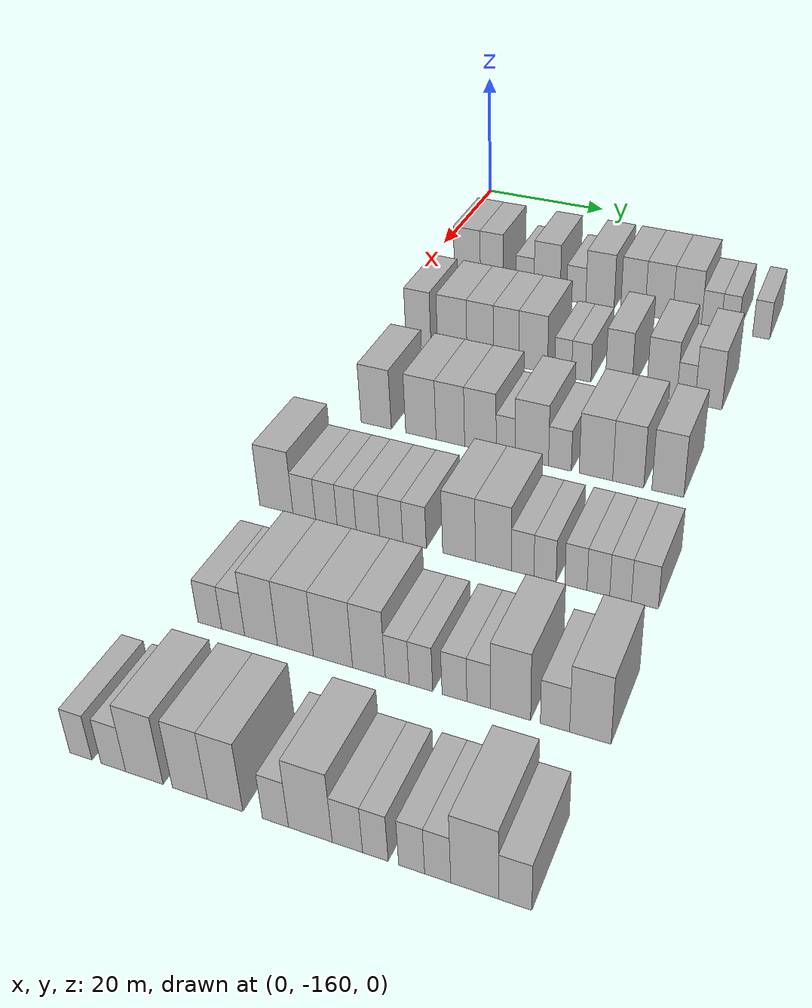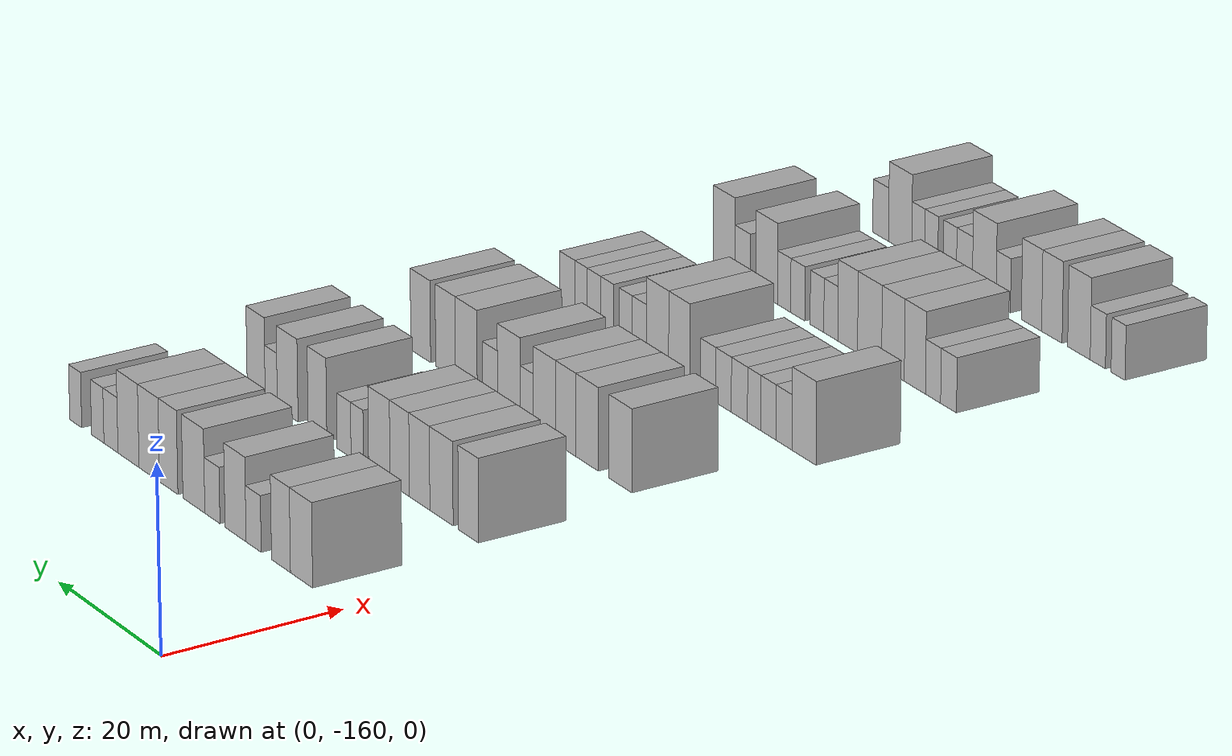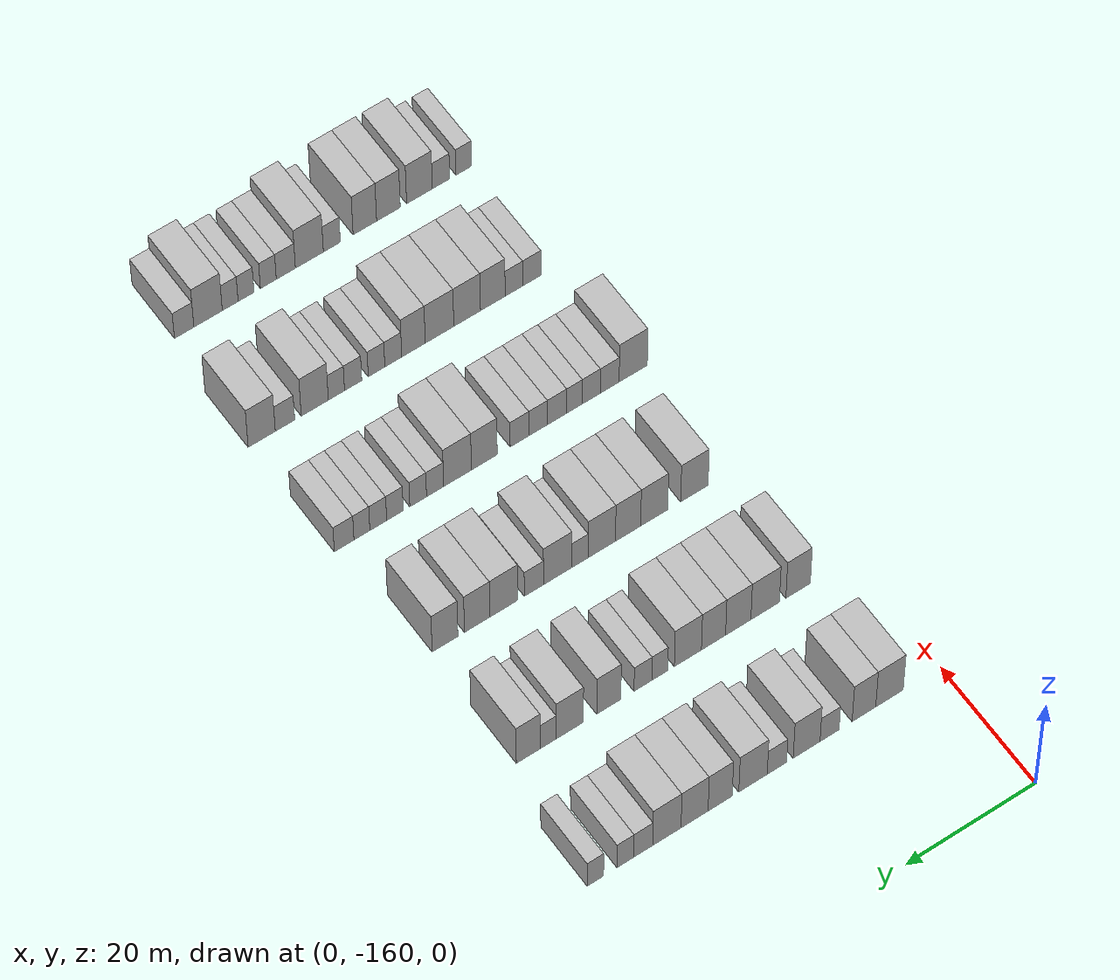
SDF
<sdf version="1.6">
 <world name="default">
  <model name="building_53">
   <static>1</static>
   <pose>25.0000 -152.0935 0 0.000000 0.000000 0.000000</pose>
   <link name="link">
    <pose>0 0 4.50 0 0 0</pose>
    <collision name="collision"><geometry><box><size>10.0000 4.2254 9.0000</size></box></geometry></collision>
    <visual name="visual">
     <cast_shadows>0</cast_shadows>
     <geometry><box><size>10.0000 4.2254 9.0000</size></box></geometry>
     <material>
      <script>
       <uri>model://HANNAS_wall/materials/scripts</uri>
       <uri>model://HANNAS_wall/materials/textures</uri>
       <name>vrc/HANNAS_wall</name>
      </script>
     </material>
    </visual>
   </link>
  </model>
  <model name="building_54">
   <static>1</static>
   <pose>25.0000 -148.1622 0 0.000000 0.000000 0.000000</pose>
   <link name="link">
    <pose>0 0 4.50 0 0 0</pose>
    <collision name="collision"><geometry><box><size>10.0000 3.6371 9.0000</size></box></geometry></collision>
    <visual name="visual">
     <cast_shadows>0</cast_shadows>
     <geometry><box><size>10.0000 3.6371 9.0000</size></box></geometry>
     <material>
      <script>
       <uri>model://HANNAS_wall/materials/scripts</uri>
       <uri>model://HANNAS_wall/materials/textures</uri>
       <name>vrc/HANNAS_wall</name>
      </script>
     </material>
    </visual>
   </link>
  </model>
  <model name="building_55">
   <static>1</static>
   <pose>25.0000 -142.8837 0 0.000000 0.000000 0.000000</pose>
   <link name="link">
    <pose>0 0 3.00 0 0 0</pose>
    <collision name="collision"><geometry><box><size>10.0000 2.9199 6.0000</size></box></geometry></collision>
    <visual name="visual">
     <cast_shadows>0</cast_shadows>
     <geometry><box><size>10.0000 2.9199 6.0000</size></box></geometry>
     <material>
      <script>
       <uri>model://HANNAS_wall/materials/scripts</uri>
       <uri>model://HANNAS_wall/materials/textures</uri>
       <name>vrc/HANNAS_wall</name>
      </script>
     </material>
    </visual>
   </link>
  </model>
  <model name="building_56">
   <static>1</static>
   <pose>25.0000 -139.3732 0 0.000000 0.000000 0.000000</pose>
   <link name="link">
    <pose>0 0 4.50 0 0 0</pose>
    <collision name="collision"><geometry><box><size>10.0000 4.1012 9.0000</size></box></geometry></collision>
    <visual name="visual">
     <cast_shadows>0</cast_shadows>
     <geometry><box><size>10.0000 4.1012 9.0000</size></box></geometry>
     <material>
      <script>
       <uri>model://HANNAS_wall/materials/scripts</uri>
       <uri>model://HANNAS_wall/materials/textures</uri>
       <name>vrc/HANNAS_wall</name>
      </script>
     </material>
    </visual>
   </link>
  </model>
  <model name="building_57">
   <static>1</static>
   <pose>25.0000 -134.8419 0 0.000000 0.000000 0.000000</pose>
   <link name="link">
    <pose>0 0 3.00 0 0 0</pose>
    <collision name="collision"><geometry><box><size>10.0000 2.9614 6.0000</size></box></geometry></collision>
    <visual name="visual">
     <cast_shadows>0</cast_shadows>
     <geometry><box><size>10.0000 2.9614 6.0000</size></box></geometry>
     <material>
      <script>
       <uri>model://HANNAS_wall/materials/scripts</uri>
       <uri>model://HANNAS_wall/materials/textures</uri>
       <name>vrc/HANNAS_wall</name>
      </script>
     </material>
    </visual>
   </link>
  </model>
  <model name="building_58">
   <static>1</static>
   <pose>25.0000 -131.1998 0 0.000000 0.000000 0.000000</pose>
   <link name="link">
    <pose>0 0 4.50 0 0 0</pose>
    <collision name="collision"><geometry><box><size>10.0000 4.3228 9.0000</size></box></geometry></collision>
    <visual name="visual">
     <cast_shadows>0</cast_shadows>
     <geometry><box><size>10.0000 4.3228 9.0000</size></box></geometry>
     <material>
      <script>
       <uri>model://HANNAS_wall/materials/scripts</uri>
       <uri>model://HANNAS_wall/materials/textures</uri>
       <name>vrc/HANNAS_wall</name>
      </script>
     </material>
    </visual>
   </link>
  </model>
  <model name="building_59">
   <static>1</static>
   <pose>25.0000 -126.2135 0 0.000000 0.000000 0.000000</pose>
   <link name="link">
    <pose>0 0 4.50 0 0 0</pose>
    <collision name="collision"><geometry><box><size>10.0000 3.6497 9.0000</size></box></geometry></collision>
    <visual name="visual">
     <cast_shadows>0</cast_shadows>
     <geometry><box><size>10.0000 3.6497 9.0000</size></box></geometry>
     <material>
      <script>
       <uri>model://HANNAS_wall/materials/scripts</uri>
       <uri>model://HANNAS_wall/materials/textures</uri>
       <name>vrc/HANNAS_wall</name>
      </script>
     </material>
    </visual>
   </link>
  </model>
  <model name="building_60">
   <static>1</static>
   <pose>25.0000 -122.3438 0 0.000000 0.000000 0.000000</pose>
   <link name="link">
    <pose>0 0 4.50 0 0 0</pose>
    <collision name="collision"><geometry><box><size>10.0000 4.0899 9.0000</size></box></geometry></collision>
    <visual name="visual">
     <cast_shadows>0</cast_shadows>
     <geometry><box><size>10.0000 4.0899 9.0000</size></box></geometry>
     <material>
      <script>
       <uri>model://HANNAS_wall/materials/scripts</uri>
       <uri>model://HANNAS_wall/materials/textures</uri>
       <name>vrc/HANNAS_wall</name>
      </script>
     </material>
    </visual>
   </link>
  </model>
  <model name="building_61">
   <static>1</static>
   <pose>25.0000 -118.1701 0 0.000000 0.000000 0.000000</pose>
   <link name="link">
    <pose>0 0 4.50 0 0 0</pose>
    <collision name="collision"><geometry><box><size>10.0000 4.2574 9.0000</size></box></geometry></collision>
    <visual name="visual">
     <cast_shadows>0</cast_shadows>
     <geometry><box><size>10.0000 4.2574 9.0000</size></box></geometry>
     <material>
      <script>
       <uri>model://HANNAS_wall/materials/scripts</uri>
       <uri>model://HANNAS_wall/materials/textures</uri>
       <name>vrc/HANNAS_wall</name>
      </script>
     </material>
    </visual>
   </link>
  </model>
  <model name="building_62">
   <static>1</static>
   <pose>25.0000 -114.6210 0 0.000000 0.000000 0.000000</pose>
   <link name="link">
    <pose>0 0 3.00 0 0 0</pose>
    <collision name="collision"><geometry><box><size>10.0000 2.8408 6.0000</size></box></geometry></collision>
    <visual name="visual">
     <cast_shadows>0</cast_shadows>
     <geometry><box><size>10.0000 2.8408 6.0000</size></box></geometry>
     <material>
      <script>
       <uri>model://HANNAS_wall/materials/scripts</uri>
       <uri>model://HANNAS_wall/materials/textures</uri>
       <name>vrc/HANNAS_wall</name>
      </script>
     </material>
    </visual>
   </link>
  </model>
  <model name="building_63">
   <static>1</static>
   <pose>25.0000 -111.9333 0 0.000000 0.000000 0.000000</pose>
   <link name="link">
    <pose>0 0 3.00 0 0 0</pose>
    <collision name="collision"><geometry><box><size>10.0000 2.5347 6.0000</size></box></geometry></collision>
    <visual name="visual">
     <cast_shadows>0</cast_shadows>
     <geometry><box><size>10.0000 2.5347 6.0000</size></box></geometry>
     <material>
      <script>
       <uri>model://HANNAS_wall/materials/scripts</uri>
       <uri>model://HANNAS_wall/materials/textures</uri>
       <name>vrc/HANNAS_wall</name>
      </script>
     </material>
    </visual>
   </link>
  </model>
  <model name="building_64">
   <static>1</static>
   <pose>25.0000 -107.4407 0 0.000000 0.000000 0.000000</pose>
   <link name="link">
    <pose>0 0 3.00 0 0 0</pose>
    <collision name="collision"><geometry><box><size>10.0000 2.4505 6.0000</size></box></geometry></collision>
    <visual name="visual">
     <cast_shadows>0</cast_shadows>
     <geometry><box><size>10.0000 2.4505 6.0000</size></box></geometry>
     <material>
      <script>
       <uri>model://HANNAS_wall/materials/scripts</uri>
       <uri>model://HANNAS_wall/materials/textures</uri>
       <name>vrc/HANNAS_wall</name>
      </script>
     </material>
    </visual>
   </link>
  </model>
  <model name="building_218">
   <static>1</static>
   <pose>44.0000 -151.7629 0 0.000000 0.000000 0.000000</pose>
   <link name="link">
    <pose>0 0 4.50 0 0 0</pose>
    <collision name="collision"><geometry><box><size>10.0000 3.7848 9.0000</size></box></geometry></collision>
    <visual name="visual">
     <cast_shadows>0</cast_shadows>
     <geometry><box><size>10.0000 3.7848 9.0000</size></box></geometry>
     <material>
      <script>
       <uri>model://HANNAS_wall/materials/scripts</uri>
       <uri>model://HANNAS_wall/materials/textures</uri>
       <name>vrc/HANNAS_wall</name>
      </script>
     </material>
    </visual>
   </link>
  </model>
  <model name="building_219">
   <static>1</static>
   <pose>44.0000 -146.6699 0 0.000000 0.000000 0.000000</pose>
   <link name="link">
    <pose>0 0 4.50 0 0 0</pose>
    <collision name="collision"><geometry><box><size>10.0000 4.4011 9.0000</size></box></geometry></collision>
    <visual name="visual">
     <cast_shadows>0</cast_shadows>
     <geometry><box><size>10.0000 4.4011 9.0000</size></box></geometry>
     <material>
      <script>
       <uri>model://HANNAS_wall/materials/scripts</uri>
       <uri>model://HANNAS_wall/materials/textures</uri>
       <name>vrc/HANNAS_wall</name>
      </script>
     </material>
    </visual>
   </link>
  </model>
  <model name="building_220">
   <static>1</static>
   <pose>44.0000 -142.5210 0 0.000000 0.000000 0.000000</pose>
   <link name="link">
    <pose>0 0 4.50 0 0 0</pose>
    <collision name="collision"><geometry><box><size>10.0000 3.8966 9.0000</size></box></geometry></collision>
    <visual name="visual">
     <cast_shadows>0</cast_shadows>
     <geometry><box><size>10.0000 3.8966 9.0000</size></box></geometry>
     <material>
      <script>
       <uri>model://HANNAS_wall/materials/scripts</uri>
       <uri>model://HANNAS_wall/materials/textures</uri>
       <name>vrc/HANNAS_wall</name>
      </script>
     </material>
    </visual>
   </link>
  </model>
  <model name="building_221">
   <static>1</static>
   <pose>44.0000 -138.7195 0 0.000000 0.000000 0.000000</pose>
   <link name="link">
    <pose>0 0 4.50 0 0 0</pose>
    <collision name="collision"><geometry><box><size>10.0000 3.7065 9.0000</size></box></geometry></collision>
    <visual name="visual">
     <cast_shadows>0</cast_shadows>
     <geometry><box><size>10.0000 3.7065 9.0000</size></box></geometry>
     <material>
      <script>
       <uri>model://HANNAS_wall/materials/scripts</uri>
       <uri>model://HANNAS_wall/materials/textures</uri>
       <name>vrc/HANNAS_wall</name>
      </script>
     </material>
    </visual>
   </link>
  </model>
  <model name="building_222">
   <static>1</static>
   <pose>44.0000 -134.7933 0 0.000000 0.000000 0.000000</pose>
   <link name="link">
    <pose>0 0 4.50 0 0 0</pose>
    <collision name="collision"><geometry><box><size>10.0000 4.1459 9.0000</size></box></geometry></collision>
    <visual name="visual">
     <cast_shadows>0</cast_shadows>
     <geometry><box><size>10.0000 4.1459 9.0000</size></box></geometry>
     <material>
      <script>
       <uri>model://HANNAS_wall/materials/scripts</uri>
       <uri>model://HANNAS_wall/materials/textures</uri>
       <name>vrc/HANNAS_wall</name>
      </script>
     </material>
    </visual>
   </link>
  </model>
  <model name="building_223">
   <static>1</static>
   <pose>44.0000 -130.5096 0 0.000000 0.000000 0.000000</pose>
   <link name="link">
    <pose>0 0 3.00 0 0 0</pose>
    <collision name="collision"><geometry><box><size>10.0000 2.4215 6.0000</size></box></geometry></collision>
    <visual name="visual">
     <cast_shadows>0</cast_shadows>
     <geometry><box><size>10.0000 2.4215 6.0000</size></box></geometry>
     <material>
      <script>
       <uri>model://HANNAS_wall/materials/scripts</uri>
       <uri>model://HANNAS_wall/materials/textures</uri>
       <name>vrc/HANNAS_wall</name>
      </script>
     </material>
    </visual>
   </link>
  </model>
  <model name="building_224">
   <static>1</static>
   <pose>44.0000 -127.9350 0 0.000000 0.000000 0.000000</pose>
   <link name="link">
    <pose>0 0 3.00 0 0 0</pose>
    <collision name="collision"><geometry><box><size>10.0000 2.7278 6.0000</size></box></geometry></collision>
    <visual name="visual">
     <cast_shadows>0</cast_shadows>
     <geometry><box><size>10.0000 2.7278 6.0000</size></box></geometry>
     <material>
      <script>
       <uri>model://HANNAS_wall/materials/scripts</uri>
       <uri>model://HANNAS_wall/materials/textures</uri>
       <name>vrc/HANNAS_wall</name>
      </script>
     </material>
    </visual>
   </link>
  </model>
  <model name="building_225">
   <static>1</static>
   <pose>44.0000 -122.7323 0 0.000000 0.000000 0.000000</pose>
   <link name="link">
    <pose>0 0 4.50 0 0 0</pose>
    <collision name="collision"><geometry><box><size>10.0000 3.6775 9.0000</size></box></geometry></collision>
    <visual name="visual">
     <cast_shadows>0</cast_shadows>
     <geometry><box><size>10.0000 3.6775 9.0000</size></box></geometry>
     <material>
      <script>
       <uri>model://HANNAS_wall/materials/scripts</uri>
       <uri>model://HANNAS_wall/materials/textures</uri>
       <name>vrc/HANNAS_wall</name>
      </script>
     </material>
    </visual>
   </link>
  </model>
  <model name="building_226">
   <static>1</static>
   <pose>44.0000 -116.8410 0 0.000000 0.000000 0.000000</pose>
   <link name="link">
    <pose>0 0 4.50 0 0 0</pose>
    <collision name="collision"><geometry><box><size>10.0000 4.1051 9.0000</size></box></geometry></collision>
    <visual name="visual">
     <cast_shadows>0</cast_shadows>
     <geometry><box><size>10.0000 4.1051 9.0000</size></box></geometry>
     <material>
      <script>
       <uri>model://HANNAS_wall/materials/scripts</uri>
       <uri>model://HANNAS_wall/materials/textures</uri>
       <name>vrc/HANNAS_wall</name>
      </script>
     </material>
    </visual>
   </link>
  </model>
  <model name="building_227">
   <static>1</static>
   <pose>44.0000 -113.5749 0 0.000000 0.000000 0.000000</pose>
   <link name="link">
    <pose>0 0 3.00 0 0 0</pose>
    <collision name="collision"><geometry><box><size>10.0000 2.4270 6.0000</size></box></geometry></collision>
    <visual name="visual">
     <cast_shadows>0</cast_shadows>
     <geometry><box><size>10.0000 2.4270 6.0000</size></box></geometry>
     <material>
      <script>
       <uri>model://HANNAS_wall/materials/scripts</uri>
       <uri>model://HANNAS_wall/materials/textures</uri>
       <name>vrc/HANNAS_wall</name>
      </script>
     </material>
    </visual>
   </link>
  </model>
  <model name="building_228">
   <static>1</static>
   <pose>44.0000 -110.5584 0 0.000000 0.000000 0.000000</pose>
   <link name="link">
    <pose>0 0 4.50 0 0 0</pose>
    <collision name="collision"><geometry><box><size>10.0000 3.6059 9.0000</size></box></geometry></collision>
    <visual name="visual">
     <cast_shadows>0</cast_shadows>
     <geometry><box><size>10.0000 3.6059 9.0000</size></box></geometry>
     <material>
      <script>
       <uri>model://HANNAS_wall/materials/scripts</uri>
       <uri>model://HANNAS_wall/materials/textures</uri>
       <name>vrc/HANNAS_wall</name>
      </script>
     </material>
    </visual>
   </link>
  </model>
  <model name="building_395">
   <static>1</static>
   <pose>63.0000 -149.2600 0 0.000000 0.000000 0.000000</pose>
   <link name="link">
    <pose>0 0 4.50 0 0 0</pose>
    <collision name="collision"><geometry><box><size>10.0000 4.2506 9.0000</size></box></geometry></collision>
    <visual name="visual">
     <cast_shadows>0</cast_shadows>
     <geometry><box><size>10.0000 4.2506 9.0000</size></box></geometry>
     <material>
      <script>
       <uri>model://HANNAS_wall/materials/scripts</uri>
       <uri>model://HANNAS_wall/materials/textures</uri>
       <name>vrc/HANNAS_wall</name>
      </script>
     </material>
    </visual>
   </link>
  </model>
  <model name="building_396">
   <static>1</static>
   <pose>63.0000 -143.0455 0 0.000000 0.000000 0.000000</pose>
   <link name="link">
    <pose>0 0 4.50 0 0 0</pose>
    <collision name="collision"><geometry><box><size>10.0000 4.1784 9.0000</size></box></geometry></collision>
    <visual name="visual">
     <cast_shadows>0</cast_shadows>
     <geometry><box><size>10.0000 4.1784 9.0000</size></box></geometry>
     <material>
      <script>
       <uri>model://HANNAS_wall/materials/scripts</uri>
       <uri>model://HANNAS_wall/materials/textures</uri>
       <name>vrc/HANNAS_wall</name>
      </script>
     </material>
    </visual>
   </link>
  </model>
  <model name="building_397">
   <static>1</static>
   <pose>63.0000 -139.0148 0 0.000000 0.000000 0.000000</pose>
   <link name="link">
    <pose>0 0 4.50 0 0 0</pose>
    <collision name="collision"><geometry><box><size>10.0000 3.8829 9.0000</size></box></geometry></collision>
    <visual name="visual">
     <cast_shadows>0</cast_shadows>
     <geometry><box><size>10.0000 3.8829 9.0000</size></box></geometry>
     <material>
      <script>
       <uri>model://HANNAS_wall/materials/scripts</uri>
       <uri>model://HANNAS_wall/materials/textures</uri>
       <name>vrc/HANNAS_wall</name>
      </script>
     </material>
    </visual>
   </link>
  </model>
  <model name="building_398">
   <static>1</static>
   <pose>63.0000 -134.9668 0 0.000000 0.000000 0.000000</pose>
   <link name="link">
    <pose>0 0 4.50 0 0 0</pose>
    <collision name="collision"><geometry><box><size>10.0000 4.2131 9.0000</size></box></geometry></collision>
    <visual name="visual">
     <cast_shadows>0</cast_shadows>
     <geometry><box><size>10.0000 4.2131 9.0000</size></box></geometry>
     <material>
      <script>
       <uri>model://HANNAS_wall/materials/scripts</uri>
       <uri>model://HANNAS_wall/materials/textures</uri>
       <name>vrc/HANNAS_wall</name>
      </script>
     </material>
    </visual>
   </link>
  </model>
  <model name="building_399">
   <static>1</static>
   <pose>63.0000 -131.6192 0 0.000000 0.000000 0.000000</pose>
   <link name="link">
    <pose>0 0 3.00 0 0 0</pose>
    <collision name="collision"><geometry><box><size>10.0000 2.4822 6.0000</size></box></geometry></collision>
    <visual name="visual">
     <cast_shadows>0</cast_shadows>
     <geometry><box><size>10.0000 2.4822 6.0000</size></box></geometry>
     <material>
      <script>
       <uri>model://HANNAS_wall/materials/scripts</uri>
       <uri>model://HANNAS_wall/materials/textures</uri>
       <name>vrc/HANNAS_wall</name>
      </script>
     </material>
    </visual>
   </link>
  </model>
  <model name="building_400">
   <static>1</static>
   <pose>63.0000 -128.1948 0 0.000000 0.000000 0.000000</pose>
   <link name="link">
    <pose>0 0 4.50 0 0 0</pose>
    <collision name="collision"><geometry><box><size>10.0000 4.3666 9.0000</size></box></geometry></collision>
    <visual name="visual">
     <cast_shadows>0</cast_shadows>
     <geometry><box><size>10.0000 4.3666 9.0000</size></box></geometry>
     <material>
      <script>
       <uri>model://HANNAS_wall/materials/scripts</uri>
       <uri>model://HANNAS_wall/materials/textures</uri>
       <name>vrc/HANNAS_wall</name>
      </script>
     </material>
    </visual>
   </link>
  </model>
  <model name="building_401">
   <static>1</static>
   <pose>63.0000 -124.5460 0 0.000000 0.000000 0.000000</pose>
   <link name="link">
    <pose>0 0 3.00 0 0 0</pose>
    <collision name="collision"><geometry><box><size>10.0000 2.9311 6.0000</size></box></geometry></collision>
    <visual name="visual">
     <cast_shadows>0</cast_shadows>
     <geometry><box><size>10.0000 2.9311 6.0000</size></box></geometry>
     <material>
      <script>
       <uri>model://HANNAS_wall/materials/scripts</uri>
       <uri>model://HANNAS_wall/materials/textures</uri>
       <name>vrc/HANNAS_wall</name>
      </script>
     </material>
    </visual>
   </link>
  </model>
  <model name="building_402">
   <static>1</static>
   <pose>63.0000 -119.9594 0 0.000000 0.000000 0.000000</pose>
   <link name="link">
    <pose>0 0 4.50 0 0 0</pose>
    <collision name="collision"><geometry><box><size>10.0000 4.2422 9.0000</size></box></geometry></collision>
    <visual name="visual">
     <cast_shadows>0</cast_shadows>
     <geometry><box><size>10.0000 4.2422 9.0000</size></box></geometry>
     <material>
      <script>
       <uri>model://HANNAS_wall/materials/scripts</uri>
       <uri>model://HANNAS_wall/materials/textures</uri>
       <name>vrc/HANNAS_wall</name>
      </script>
     </material>
    </visual>
   </link>
  </model>
  <model name="building_403">
   <static>1</static>
   <pose>63.0000 -115.9044 0 0.000000 0.000000 0.000000</pose>
   <link name="link">
    <pose>0 0 4.50 0 0 0</pose>
    <collision name="collision"><geometry><box><size>10.0000 3.8678 9.0000</size></box></geometry></collision>
    <visual name="visual">
     <cast_shadows>0</cast_shadows>
     <geometry><box><size>10.0000 3.8678 9.0000</size></box></geometry>
     <material>
      <script>
       <uri>model://HANNAS_wall/materials/scripts</uri>
       <uri>model://HANNAS_wall/materials/textures</uri>
       <name>vrc/HANNAS_wall</name>
      </script>
     </material>
    </visual>
   </link>
  </model>
  <model name="building_404">
   <static>1</static>
   <pose>63.0000 -111.0200 0 0.000000 0.000000 0.000000</pose>
   <link name="link">
    <pose>0 0 4.50 0 0 0</pose>
    <collision name="collision"><geometry><box><size>10.0000 3.9011 9.0000</size></box></geometry></collision>
    <visual name="visual">
     <cast_shadows>0</cast_shadows>
     <geometry><box><size>10.0000 3.9011 9.0000</size></box></geometry>
     <material>
      <script>
       <uri>model://HANNAS_wall/materials/scripts</uri>
       <uri>model://HANNAS_wall/materials/textures</uri>
       <name>vrc/HANNAS_wall</name>
      </script>
     </material>
    </visual>
   </link>
  </model>
  <model name="building_565">
   <static>1</static>
   <pose>82.0000 -153.1317 0 0.000000 0.000000 0.000000</pose>
   <link name="link">
    <pose>0 0 4.50 0 0 0</pose>
    <collision name="collision"><geometry><box><size>10.0000 4.3892 9.0000</size></box></geometry></collision>
    <visual name="visual">
     <cast_shadows>0</cast_shadows>
     <geometry><box><size>10.0000 4.3892 9.0000</size></box></geometry>
     <material>
      <script>
       <uri>model://HANNAS_wall/materials/scripts</uri>
       <uri>model://HANNAS_wall/materials/textures</uri>
       <name>vrc/HANNAS_wall</name>
      </script>
     </material>
    </visual>
   </link>
  </model>
  <model name="building_566">
   <static>1</static>
   <pose>82.0000 -149.4621 0 0.000000 0.000000 0.000000</pose>
   <link name="link">
    <pose>0 0 3.00 0 0 0</pose>
    <collision name="collision"><geometry><box><size>10.0000 2.9500 6.0000</size></box></geometry></collision>
    <visual name="visual">
     <cast_shadows>0</cast_shadows>
     <geometry><box><size>10.0000 2.9500 6.0000</size></box></geometry>
     <material>
      <script>
       <uri>model://HANNAS_wall/materials/scripts</uri>
       <uri>model://HANNAS_wall/materials/textures</uri>
       <name>vrc/HANNAS_wall</name>
      </script>
     </material>
    </visual>
   </link>
  </model>
  <model name="building_567">
   <static>1</static>
   <pose>82.0000 -146.5964 0 0.000000 0.000000 0.000000</pose>
   <link name="link">
    <pose>0 0 3.00 0 0 0</pose>
    <collision name="collision"><geometry><box><size>10.0000 2.7815 6.0000</size></box></geometry></collision>
    <visual name="visual">
     <cast_shadows>0</cast_shadows>
     <geometry><box><size>10.0000 2.7815 6.0000</size></box></geometry>
     <material>
      <script>
       <uri>model://HANNAS_wall/materials/scripts</uri>
       <uri>model://HANNAS_wall/materials/textures</uri>
       <name>vrc/HANNAS_wall</name>
      </script>
     </material>
    </visual>
   </link>
  </model>
  <model name="building_568">
   <static>1</static>
   <pose>82.0000 -143.9892 0 0.000000 0.000000 0.000000</pose>
   <link name="link">
    <pose>0 0 3.00 0 0 0</pose>
    <collision name="collision"><geometry><box><size>10.0000 2.4329 6.0000</size></box></geometry></collision>
    <visual name="visual">
     <cast_shadows>0</cast_shadows>
     <geometry><box><size>10.0000 2.4329 6.0000</size></box></geometry>
     <material>
      <script>
       <uri>model://HANNAS_wall/materials/scripts</uri>
       <uri>model://HANNAS_wall/materials/textures</uri>
       <name>vrc/HANNAS_wall</name>
      </script>
     </material>
    </visual>
   </link>
  </model>
  <model name="building_569">
   <static>1</static>
   <pose>82.0000 -141.2792 0 0.000000 0.000000 0.000000</pose>
   <link name="link">
    <pose>0 0 3.00 0 0 0</pose>
    <collision name="collision"><geometry><box><size>10.0000 2.9870 6.0000</size></box></geometry></collision>
    <visual name="visual">
     <cast_shadows>0</cast_shadows>
     <geometry><box><size>10.0000 2.9870 6.0000</size></box></geometry>
     <material>
      <script>
       <uri>model://HANNAS_wall/materials/scripts</uri>
       <uri>model://HANNAS_wall/materials/textures</uri>
       <name>vrc/HANNAS_wall</name>
      </script>
     </material>
    </visual>
   </link>
  </model>
  <model name="building_570">
   <static>1</static>
   <pose>82.0000 -138.3467 0 0.000000 0.000000 0.000000</pose>
   <link name="link">
    <pose>0 0 3.00 0 0 0</pose>
    <collision name="collision"><geometry><box><size>10.0000 2.8778 6.0000</size></box></geometry></collision>
    <visual name="visual">
     <cast_shadows>0</cast_shadows>
     <geometry><box><size>10.0000 2.8778 6.0000</size></box></geometry>
     <material>
      <script>
       <uri>model://HANNAS_wall/materials/scripts</uri>
       <uri>model://HANNAS_wall/materials/textures</uri>
       <name>vrc/HANNAS_wall</name>
      </script>
     </material>
    </visual>
   </link>
  </model>
  <model name="building_571">
   <static>1</static>
   <pose>82.0000 -135.4524 0 0.000000 0.000000 0.000000</pose>
   <link name="link">
    <pose>0 0 3.00 0 0 0</pose>
    <collision name="collision"><geometry><box><size>10.0000 2.9108 6.0000</size></box></geometry></collision>
    <visual name="visual">
     <cast_shadows>0</cast_shadows>
     <geometry><box><size>10.0000 2.9108 6.0000</size></box></geometry>
     <material>
      <script>
       <uri>model://HANNAS_wall/materials/scripts</uri>
       <uri>model://HANNAS_wall/materials/textures</uri>
       <name>vrc/HANNAS_wall</name>
      </script>
     </material>
    </visual>
   </link>
  </model>
  <model name="building_572">
   <static>1</static>
   <pose>82.0000 -130.0133 0 0.000000 0.000000 0.000000</pose>
   <link name="link">
    <pose>0 0 4.50 0 0 0</pose>
    <collision name="collision"><geometry><box><size>10.0000 3.9675 9.0000</size></box></geometry></collision>
    <visual name="visual">
     <cast_shadows>0</cast_shadows>
     <geometry><box><size>10.0000 3.9675 9.0000</size></box></geometry>
     <material>
      <script>
       <uri>model://HANNAS_wall/materials/scripts</uri>
       <uri>model://HANNAS_wall/materials/textures</uri>
       <name>vrc/HANNAS_wall</name>
      </script>
     </material>
    </visual>
   </link>
  </model>
  <model name="building_573">
   <static>1</static>
   <pose>82.0000 -125.8953 0 0.000000 0.000000 0.000000</pose>
   <link name="link">
    <pose>0 0 4.50 0 0 0</pose>
    <collision name="collision"><geometry><box><size>10.0000 4.2685 9.0000</size></box></geometry></collision>
    <visual name="visual">
     <cast_shadows>0</cast_shadows>
     <geometry><box><size>10.0000 4.2685 9.0000</size></box></geometry>
     <material>
      <script>
       <uri>model://HANNAS_wall/materials/scripts</uri>
       <uri>model://HANNAS_wall/materials/textures</uri>
       <name>vrc/HANNAS_wall</name>
      </script>
     </material>
    </visual>
   </link>
  </model>
  <model name="building_574">
   <static>1</static>
   <pose>82.0000 -122.4438 0 0.000000 0.000000 0.000000</pose>
   <link name="link">
    <pose>0 0 3.00 0 0 0</pose>
    <collision name="collision"><geometry><box><size>10.0000 2.6345 6.0000</size></box></geometry></collision>
    <visual name="visual">
     <cast_shadows>0</cast_shadows>
     <geometry><box><size>10.0000 2.6345 6.0000</size></box></geometry>
     <material>
      <script>
       <uri>model://HANNAS_wall/materials/scripts</uri>
       <uri>model://HANNAS_wall/materials/textures</uri>
       <name>vrc/HANNAS_wall</name>
      </script>
     </material>
    </visual>
   </link>
  </model>
  <model name="building_575">
   <static>1</static>
   <pose>82.0000 -119.8469 0 0.000000 0.000000 0.000000</pose>
   <link name="link">
    <pose>0 0 3.00 0 0 0</pose>
    <collision name="collision"><geometry><box><size>10.0000 2.5593 6.0000</size></box></geometry></collision>
    <visual name="visual">
     <cast_shadows>0</cast_shadows>
     <geometry><box><size>10.0000 2.5593 6.0000</size></box></geometry>
     <material>
      <script>
       <uri>model://HANNAS_wall/materials/scripts</uri>
       <uri>model://HANNAS_wall/materials/textures</uri>
       <name>vrc/HANNAS_wall</name>
      </script>
     </material>
    </visual>
   </link>
  </model>
  <model name="building_576">
   <static>1</static>
   <pose>82.0000 -116.3006 0 0.000000 0.000000 0.000000</pose>
   <link name="link">
    <pose>0 0 3.00 0 0 0</pose>
    <collision name="collision"><geometry><box><size>10.0000 2.5332 6.0000</size></box></geometry></collision>
    <visual name="visual">
     <cast_shadows>0</cast_shadows>
     <geometry><box><size>10.0000 2.5332 6.0000</size></box></geometry>
     <material>
      <script>
       <uri>model://HANNAS_wall/materials/scripts</uri>
       <uri>model://HANNAS_wall/materials/textures</uri>
       <name>vrc/HANNAS_wall</name>
      </script>
     </material>
    </visual>
   </link>
  </model>
  <model name="building_577">
   <static>1</static>
   <pose>82.0000 -113.7521 0 0.000000 0.000000 0.000000</pose>
   <link name="link">
    <pose>0 0 3.00 0 0 0</pose>
    <collision name="collision"><geometry><box><size>10.0000 2.5639 6.0000</size></box></geometry></collision>
    <visual name="visual">
     <cast_shadows>0</cast_shadows>
     <geometry><box><size>10.0000 2.5639 6.0000</size></box></geometry>
     <material>
      <script>
       <uri>model://HANNAS_wall/materials/scripts</uri>
       <uri>model://HANNAS_wall/materials/textures</uri>
       <name>vrc/HANNAS_wall</name>
      </script>
     </material>
    </visual>
   </link>
  </model>
  <model name="building_578">
   <static>1</static>
   <pose>82.0000 -111.2611 0 0.000000 0.000000 0.000000</pose>
   <link name="link">
    <pose>0 0 3.00 0 0 0</pose>
    <collision name="collision"><geometry><box><size>10.0000 2.4180 6.0000</size></box></geometry></collision>
    <visual name="visual">
     <cast_shadows>0</cast_shadows>
     <geometry><box><size>10.0000 2.4180 6.0000</size></box></geometry>
     <material>
      <script>
       <uri>model://HANNAS_wall/materials/scripts</uri>
       <uri>model://HANNAS_wall/materials/textures</uri>
       <name>vrc/HANNAS_wall</name>
      </script>
     </material>
    </visual>
   </link>
  </model>
  <model name="building_579">
   <static>1</static>
   <pose>82.0000 -108.5582 0 0.000000 0.000000 0.000000</pose>
   <link name="link">
    <pose>0 0 3.00 0 0 0</pose>
    <collision name="collision"><geometry><box><size>10.0000 2.9879 6.0000</size></box></geometry></collision>
    <visual name="visual">
     <cast_shadows>0</cast_shadows>
     <geometry><box><size>10.0000 2.9879 6.0000</size></box></geometry>
     <material>
      <script>
       <uri>model://HANNAS_wall/materials/scripts</uri>
       <uri>model://HANNAS_wall/materials/textures</uri>
       <name>vrc/HANNAS_wall</name>
      </script>
     </material>
    </visual>
   </link>
  </model>
  <model name="building_738">
   <static>1</static>
   <pose>101.0000 -150.4724 0 0.000000 0.000000 0.000000</pose>
   <link name="link">
    <pose>0 0 3.00 0 0 0</pose>
    <collision name="collision"><geometry><box><size>10.0000 2.8646 6.0000</size></box></geometry></collision>
    <visual name="visual">
     <cast_shadows>0</cast_shadows>
     <geometry><box><size>10.0000 2.8646 6.0000</size></box></geometry>
     <material>
      <script>
       <uri>model://HANNAS_wall/materials/scripts</uri>
       <uri>model://HANNAS_wall/materials/textures</uri>
       <name>vrc/HANNAS_wall</name>
      </script>
     </material>
    </visual>
   </link>
  </model>
  <model name="building_739">
   <static>1</static>
   <pose>101.0000 -147.6713 0 0.000000 0.000000 0.000000</pose>
   <link name="link">
    <pose>0 0 3.00 0 0 0</pose>
    <collision name="collision"><geometry><box><size>10.0000 2.7377 6.0000</size></box></geometry></collision>
    <visual name="visual">
     <cast_shadows>0</cast_shadows>
     <geometry><box><size>10.0000 2.7377 6.0000</size></box></geometry>
     <material>
      <script>
       <uri>model://HANNAS_wall/materials/scripts</uri>
       <uri>model://HANNAS_wall/materials/textures</uri>
       <name>vrc/HANNAS_wall</name>
      </script>
     </material>
    </visual>
   </link>
  </model>
  <model name="building_740">
   <static>1</static>
   <pose>101.0000 -144.3680 0 0.000000 0.000000 0.000000</pose>
   <link name="link">
    <pose>0 0 4.50 0 0 0</pose>
    <collision name="collision"><geometry><box><size>10.0000 3.8687 9.0000</size></box></geometry></collision>
    <visual name="visual">
     <cast_shadows>0</cast_shadows>
     <geometry><box><size>10.0000 3.8687 9.0000</size></box></geometry>
     <material>
      <script>
       <uri>model://HANNAS_wall/materials/scripts</uri>
       <uri>model://HANNAS_wall/materials/textures</uri>
       <name>vrc/HANNAS_wall</name>
      </script>
     </material>
    </visual>
   </link>
  </model>
  <model name="building_741">
   <static>1</static>
   <pose>101.0000 -140.3552 0 0.000000 0.000000 0.000000</pose>
   <link name="link">
    <pose>0 0 4.50 0 0 0</pose>
    <collision name="collision"><geometry><box><size>10.0000 4.1568 9.0000</size></box></geometry></collision>
    <visual name="visual">
     <cast_shadows>0</cast_shadows>
     <geometry><box><size>10.0000 4.1568 9.0000</size></box></geometry>
     <material>
      <script>
       <uri>model://HANNAS_wall/materials/scripts</uri>
       <uri>model://HANNAS_wall/materials/textures</uri>
       <name>vrc/HANNAS_wall</name>
      </script>
     </material>
    </visual>
   </link>
  </model>
  <model name="building_742">
   <static>1</static>
   <pose>101.0000 -136.0578 0 0.000000 0.000000 0.000000</pose>
   <link name="link">
    <pose>0 0 4.50 0 0 0</pose>
    <collision name="collision"><geometry><box><size>10.0000 4.4380 9.0000</size></box></geometry></collision>
    <visual name="visual">
     <cast_shadows>0</cast_shadows>
     <geometry><box><size>10.0000 4.4380 9.0000</size></box></geometry>
     <material>
      <script>
       <uri>model://HANNAS_wall/materials/scripts</uri>
       <uri>model://HANNAS_wall/materials/textures</uri>
       <name>vrc/HANNAS_wall</name>
      </script>
     </material>
    </visual>
   </link>
  </model>
  <model name="building_743">
   <static>1</static>
   <pose>101.0000 -132.0141 0 0.000000 0.000000 0.000000</pose>
   <link name="link">
    <pose>0 0 4.50 0 0 0</pose>
    <collision name="collision"><geometry><box><size>10.0000 3.6495 9.0000</size></box></geometry></collision>
    <visual name="visual">
     <cast_shadows>0</cast_shadows>
     <geometry><box><size>10.0000 3.6495 9.0000</size></box></geometry>
     <material>
      <script>
       <uri>model://HANNAS_wall/materials/scripts</uri>
       <uri>model://HANNAS_wall/materials/textures</uri>
       <name>vrc/HANNAS_wall</name>
      </script>
     </material>
    </visual>
   </link>
  </model>
  <model name="building_744">
   <static>1</static>
   <pose>101.0000 -128.8793 0 0.000000 0.000000 0.000000</pose>
   <link name="link">
    <pose>0 0 3.00 0 0 0</pose>
    <collision name="collision"><geometry><box><size>10.0000 2.6202 6.0000</size></box></geometry></collision>
    <visual name="visual">
     <cast_shadows>0</cast_shadows>
     <geometry><box><size>10.0000 2.6202 6.0000</size></box></geometry>
     <material>
      <script>
       <uri>model://HANNAS_wall/materials/scripts</uri>
       <uri>model://HANNAS_wall/materials/textures</uri>
       <name>vrc/HANNAS_wall</name>
      </script>
     </material>
    </visual>
   </link>
  </model>
  <model name="building_745">
   <static>1</static>
   <pose>101.0000 -126.2911 0 0.000000 0.000000 0.000000</pose>
   <link name="link">
    <pose>0 0 3.00 0 0 0</pose>
    <collision name="collision"><geometry><box><size>10.0000 2.5564 6.0000</size></box></geometry></collision>
    <visual name="visual">
     <cast_shadows>0</cast_shadows>
     <geometry><box><size>10.0000 2.5564 6.0000</size></box></geometry>
     <material>
      <script>
       <uri>model://HANNAS_wall/materials/scripts</uri>
       <uri>model://HANNAS_wall/materials/textures</uri>
       <name>vrc/HANNAS_wall</name>
      </script>
     </material>
    </visual>
   </link>
  </model>
  <model name="building_746">
   <static>1</static>
   <pose>101.0000 -122.6859 0 0.000000 0.000000 0.000000</pose>
   <link name="link">
    <pose>0 0 3.00 0 0 0</pose>
    <collision name="collision"><geometry><box><size>10.0000 2.6540 6.0000</size></box></geometry></collision>
    <visual name="visual">
     <cast_shadows>0</cast_shadows>
     <geometry><box><size>10.0000 2.6540 6.0000</size></box></geometry>
     <material>
      <script>
       <uri>model://HANNAS_wall/materials/scripts</uri>
       <uri>model://HANNAS_wall/materials/textures</uri>
       <name>vrc/HANNAS_wall</name>
      </script>
     </material>
    </visual>
   </link>
  </model>
  <model name="building_747">
   <static>1</static>
   <pose>101.0000 -120.1116 0 0.000000 0.000000 0.000000</pose>
   <link name="link">
    <pose>0 0 3.00 0 0 0</pose>
    <collision name="collision"><geometry><box><size>10.0000 2.4945 6.0000</size></box></geometry></collision>
    <visual name="visual">
     <cast_shadows>0</cast_shadows>
     <geometry><box><size>10.0000 2.4945 6.0000</size></box></geometry>
     <material>
      <script>
       <uri>model://HANNAS_wall/materials/scripts</uri>
       <uri>model://HANNAS_wall/materials/textures</uri>
       <name>vrc/HANNAS_wall</name>
      </script>
     </material>
    </visual>
   </link>
  </model>
  <model name="building_748">
   <static>1</static>
   <pose>101.0000 -116.7852 0 0.000000 0.000000 0.000000</pose>
   <link name="link">
    <pose>0 0 4.50 0 0 0</pose>
    <collision name="collision"><geometry><box><size>10.0000 4.1583 9.0000</size></box></geometry></collision>
    <visual name="visual">
     <cast_shadows>0</cast_shadows>
     <geometry><box><size>10.0000 4.1583 9.0000</size></box></geometry>
     <material>
      <script>
       <uri>model://HANNAS_wall/materials/scripts</uri>
       <uri>model://HANNAS_wall/materials/textures</uri>
       <name>vrc/HANNAS_wall</name>
      </script>
     </material>
    </visual>
   </link>
  </model>
  <model name="building_749">
   <static>1</static>
   <pose>101.0000 -112.2203 0 0.000000 0.000000 0.000000</pose>
   <link name="link">
    <pose>0 0 3.00 0 0 0</pose>
    <collision name="collision"><geometry><box><size>10.0000 2.9716 6.0000</size></box></geometry></collision>
    <visual name="visual">
     <cast_shadows>0</cast_shadows>
     <geometry><box><size>10.0000 2.9716 6.0000</size></box></geometry>
     <material>
      <script>
       <uri>model://HANNAS_wall/materials/scripts</uri>
       <uri>model://HANNAS_wall/materials/textures</uri>
       <name>vrc/HANNAS_wall</name>
      </script>
     </material>
    </visual>
   </link>
  </model>
  <model name="building_750">
   <static>1</static>
   <pose>101.0000 -108.6610 0 0.000000 0.000000 0.000000</pose>
   <link name="link">
    <pose>0 0 4.50 0 0 0</pose>
    <collision name="collision"><geometry><box><size>10.0000 4.1471 9.0000</size></box></geometry></collision>
    <visual name="visual">
     <cast_shadows>0</cast_shadows>
     <geometry><box><size>10.0000 4.1471 9.0000</size></box></geometry>
     <material>
      <script>
       <uri>model://HANNAS_wall/materials/scripts</uri>
       <uri>model://HANNAS_wall/materials/textures</uri>
       <name>vrc/HANNAS_wall</name>
      </script>
     </material>
    </visual>
   </link>
  </model>
  <model name="building_915">
   <static>1</static>
   <pose>120.0000 -152.8224 0 0.000000 0.000000 0.000000</pose>
   <link name="link">
    <pose>0 0 3.00 0 0 0</pose>
    <collision name="collision"><geometry><box><size>10.0000 2.4800 6.0000</size></box></geometry></collision>
    <visual name="visual">
     <cast_shadows>0</cast_shadows>
     <geometry><box><size>10.0000 2.4800 6.0000</size></box></geometry>
     <material>
      <script>
       <uri>model://HANNAS_wall/materials/scripts</uri>
       <uri>model://HANNAS_wall/materials/textures</uri>
       <name>vrc/HANNAS_wall</name>
      </script>
     </material>
    </visual>
   </link>
  </model>
  <model name="building_916">
   <static>1</static>
   <pose>120.0000 -149.2193 0 0.000000 0.000000 0.000000</pose>
   <link name="link">
    <pose>0 0 3.00 0 0 0</pose>
    <collision name="collision"><geometry><box><size>10.0000 2.7263 6.0000</size></box></geometry></collision>
    <visual name="visual">
     <cast_shadows>0</cast_shadows>
     <geometry><box><size>10.0000 2.7263 6.0000</size></box></geometry>
     <material>
      <script>
       <uri>model://HANNAS_wall/materials/scripts</uri>
       <uri>model://HANNAS_wall/materials/textures</uri>
       <name>vrc/HANNAS_wall</name>
      </script>
     </material>
    </visual>
   </link>
  </model>
  <model name="building_917">
   <static>1</static>
   <pose>120.0000 -145.8332 0 0.000000 0.000000 0.000000</pose>
   <link name="link">
    <pose>0 0 4.50 0 0 0</pose>
    <collision name="collision"><geometry><box><size>10.0000 4.0459 9.0000</size></box></geometry></collision>
    <visual name="visual">
     <cast_shadows>0</cast_shadows>
     <geometry><box><size>10.0000 4.0459 9.0000</size></box></geometry>
     <material>
      <script>
       <uri>model://HANNAS_wall/materials/scripts</uri>
       <uri>model://HANNAS_wall/materials/textures</uri>
       <name>vrc/HANNAS_wall</name>
      </script>
     </material>
    </visual>
   </link>
  </model>
  <model name="building_918">
   <static>1</static>
   <pose>120.0000 -140.9581 0 0.000000 0.000000 0.000000</pose>
   <link name="link">
    <pose>0 0 4.50 0 0 0</pose>
    <collision name="collision"><geometry><box><size>10.0000 3.7043 9.0000</size></box></geometry></collision>
    <visual name="visual">
     <cast_shadows>0</cast_shadows>
     <geometry><box><size>10.0000 3.7043 9.0000</size></box></geometry>
     <material>
      <script>
       <uri>model://HANNAS_wall/materials/scripts</uri>
       <uri>model://HANNAS_wall/materials/textures</uri>
       <name>vrc/HANNAS_wall</name>
      </script>
     </material>
    </visual>
   </link>
  </model>
  <model name="building_919">
   <static>1</static>
   <pose>120.0000 -137.2679 0 0.000000 0.000000 0.000000</pose>
   <link name="link">
    <pose>0 0 4.50 0 0 0</pose>
    <collision name="collision"><geometry><box><size>10.0000 3.6761 9.0000</size></box></geometry></collision>
    <visual name="visual">
     <cast_shadows>0</cast_shadows>
     <geometry><box><size>10.0000 3.6761 9.0000</size></box></geometry>
     <material>
      <script>
       <uri>model://HANNAS_wall/materials/scripts</uri>
       <uri>model://HANNAS_wall/materials/textures</uri>
       <name>vrc/HANNAS_wall</name>
      </script>
     </material>
    </visual>
   </link>
  </model>
  <model name="building_920">
   <static>1</static>
   <pose>120.0000 -132.1122 0 0.000000 0.000000 0.000000</pose>
   <link name="link">
    <pose>0 0 3.00 0 0 0</pose>
    <collision name="collision"><geometry><box><size>10.0000 2.6354 6.0000</size></box></geometry></collision>
    <visual name="visual">
     <cast_shadows>0</cast_shadows>
     <geometry><box><size>10.0000 2.6354 6.0000</size></box></geometry>
     <material>
      <script>
       <uri>model://HANNAS_wall/materials/scripts</uri>
       <uri>model://HANNAS_wall/materials/textures</uri>
       <name>vrc/HANNAS_wall</name>
      </script>
     </material>
    </visual>
   </link>
  </model>
  <model name="building_921">
   <static>1</static>
   <pose>120.0000 -128.6171 0 0.000000 0.000000 0.000000</pose>
   <link name="link">
    <pose>0 0 4.50 0 0 0</pose>
    <collision name="collision"><geometry><box><size>10.0000 4.3547 9.0000</size></box></geometry></collision>
    <visual name="visual">
     <cast_shadows>0</cast_shadows>
     <geometry><box><size>10.0000 4.3547 9.0000</size></box></geometry>
     <material>
      <script>
       <uri>model://HANNAS_wall/materials/scripts</uri>
       <uri>model://HANNAS_wall/materials/textures</uri>
       <name>vrc/HANNAS_wall</name>
      </script>
     </material>
    </visual>
   </link>
  </model>
  <model name="building_922">
   <static>1</static>
   <pose>120.0000 -124.9609 0 0.000000 0.000000 0.000000</pose>
   <link name="link">
    <pose>0 0 3.00 0 0 0</pose>
    <collision name="collision"><geometry><box><size>10.0000 2.9578 6.0000</size></box></geometry></collision>
    <visual name="visual">
     <cast_shadows>0</cast_shadows>
     <geometry><box><size>10.0000 2.9578 6.0000</size></box></geometry>
     <material>
      <script>
       <uri>model://HANNAS_wall/materials/scripts</uri>
       <uri>model://HANNAS_wall/materials/textures</uri>
       <name>vrc/HANNAS_wall</name>
      </script>
     </material>
    </visual>
   </link>
  </model>
  <model name="building_923">
   <static>1</static>
   <pose>120.0000 -122.2531 0 0.000000 0.000000 0.000000</pose>
   <link name="link">
    <pose>0 0 3.00 0 0 0</pose>
    <collision name="collision"><geometry><box><size>10.0000 2.4577 6.0000</size></box></geometry></collision>
    <visual name="visual">
     <cast_shadows>0</cast_shadows>
     <geometry><box><size>10.0000 2.4577 6.0000</size></box></geometry>
     <material>
      <script>
       <uri>model://HANNAS_wall/materials/scripts</uri>
       <uri>model://HANNAS_wall/materials/textures</uri>
       <name>vrc/HANNAS_wall</name>
      </script>
     </material>
    </visual>
   </link>
  </model>
  <model name="building_924">
   <static>1</static>
   <pose>120.0000 -118.7999 0 0.000000 0.000000 0.000000</pose>
   <link name="link">
    <pose>0 0 3.00 0 0 0</pose>
    <collision name="collision"><geometry><box><size>10.0000 2.4487 6.0000</size></box></geometry></collision>
    <visual name="visual">
     <cast_shadows>0</cast_shadows>
     <geometry><box><size>10.0000 2.4487 6.0000</size></box></geometry>
     <material>
      <script>
       <uri>model://HANNAS_wall/materials/scripts</uri>
       <uri>model://HANNAS_wall/materials/textures</uri>
       <name>vrc/HANNAS_wall</name>
      </script>
     </material>
    </visual>
   </link>
  </model>
  <model name="building_925">
   <static>1</static>
   <pose>120.0000 -116.3575 0 0.000000 0.000000 0.000000</pose>
   <link name="link">
    <pose>0 0 3.00 0 0 0</pose>
    <collision name="collision"><geometry><box><size>10.0000 2.4361 6.0000</size></box></geometry></collision>
    <visual name="visual">
     <cast_shadows>0</cast_shadows>
     <geometry><box><size>10.0000 2.4361 6.0000</size></box></geometry>
     <material>
      <script>
       <uri>model://HANNAS_wall/materials/scripts</uri>
       <uri>model://HANNAS_wall/materials/textures</uri>
       <name>vrc/HANNAS_wall</name>
      </script>
     </material>
    </visual>
   </link>
  </model>
  <model name="building_926">
   <static>1</static>
   <pose>120.0000 -112.9547 0 0.000000 0.000000 0.000000</pose>
   <link name="link">
    <pose>0 0 4.50 0 0 0</pose>
    <collision name="collision"><geometry><box><size>10.0000 4.3696 9.0000</size></box></geometry></collision>
    <visual name="visual">
     <cast_shadows>0</cast_shadows>
     <geometry><box><size>10.0000 4.3696 9.0000</size></box></geometry>
     <material>
      <script>
       <uri>model://HANNAS_wall/materials/scripts</uri>
       <uri>model://HANNAS_wall/materials/textures</uri>
       <name>vrc/HANNAS_wall</name>
      </script>
     </material>
    </visual>
   </link>
  </model>
  <model name="building_927">
   <static>1</static>
   <pose>120.0000 -109.2755 0 0.000000 0.000000 0.000000</pose>
   <link name="link">
    <pose>0 0 3.00 0 0 0</pose>
    <collision name="collision"><geometry><box><size>10.0000 2.9887 6.0000</size></box></geometry></collision>
    <visual name="visual">
     <cast_shadows>0</cast_shadows>
     <geometry><box><size>10.0000 2.9887 6.0000</size></box></geometry>
     <material>
      <script>
       <uri>model://HANNAS_wall/materials/scripts</uri>
       <uri>model://HANNAS_wall/materials/textures</uri>
       <name>vrc/HANNAS_wall</name>
      </script>
     </material>
    </visual>
   </link>
  </model>
 </world>
</sdf>
